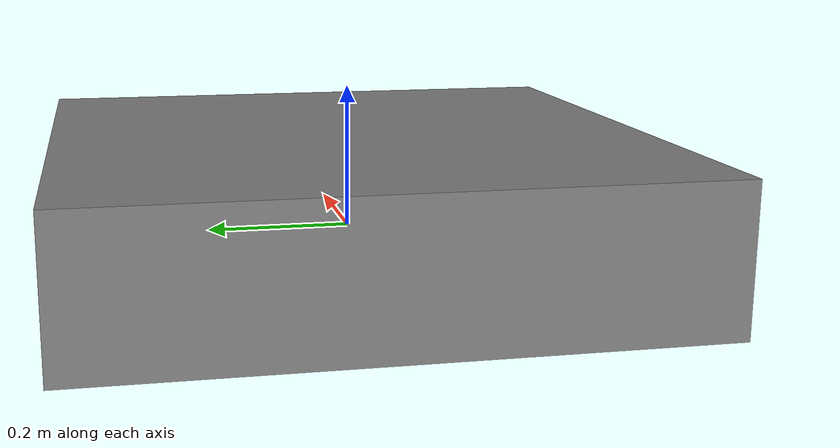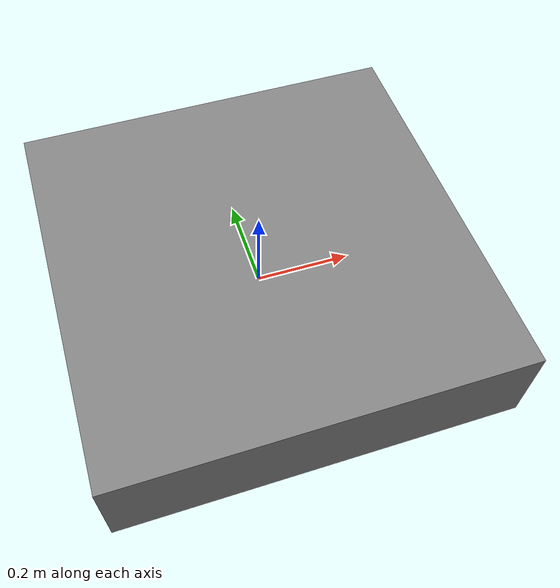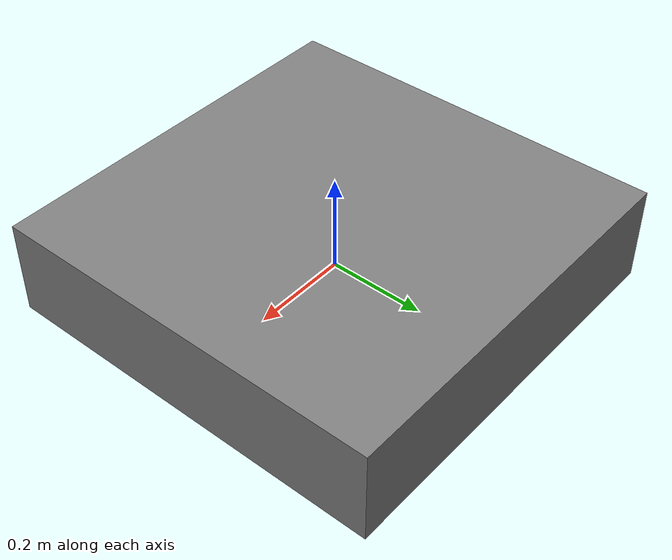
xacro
<?xml version="1.0"?>
<robot xmlns:xacro="http://www.ros.org/wiki/xacro" name="igvc_sim">

  <!-- Drivetrain parameters — must match igvc_control values -->
  <xacro:property name="wheel_separation" value="0.730" />
  <xacro:property name="wheel_radius"     value="0.0345" />

  <!-- Base link -->
  <link name="base_link">
    <visual>
      <geometry><box size="0.826 0.826 0.2" /></geometry>
      <material name="grey"><color rgba="0.5 0.5 0.5 1" /></material>
    </visual>
  </link>

  <link name="base_footprint" />
  <joint name="base_joint" type="fixed">
    <parent link="base_footprint" />
    <child  link="base_link" />
    <origin xyz="0 0 ${wheel_radius}" rpy="0 0 0" />
  </joint>

  <!-- Laser frame (for costmap visualization — offset to top of robot) -->
  <link name="laser_frame" />
  <joint name="laser_joint" type="fixed">
    <parent link="base_link" />
    <child  link="laser_frame" />
    <origin xyz="0.15 0 0.15" rpy="0 0 0" />
  </joint>

  <!-- Left wheel -->
  <link name="left_wheel">
    <visual>
      <geometry><cylinder radius="${wheel_radius}" length="0.05" /></geometry>
      <material name="black"><color rgba="0.1 0.1 0.1 1" /></material>
    </visual>
  </link>
  <joint name="left_wheel_joint" type="continuous">
    <parent link="base_link" />
    <child  link="left_wheel" />
    <origin xyz="0 ${wheel_separation/2} 0" rpy="${-pi/2} 0 0" />
    <axis xyz="0 0 1" />
  </joint>

  <!-- Right wheel -->
  <link name="right_wheel">
    <visual>
      <geometry><cylinder radius="${wheel_radius}" length="0.05" /></geometry>
      <material name="black"><color rgba="0.1 0.1 0.1 1" /></material>
    </visual>
  </link>
  <joint name="right_wheel_joint" type="continuous">
    <parent link="base_link" />
    <child  link="right_wheel" />
    <origin xyz="0 ${-wheel_separation/2} 0" rpy="${-pi/2} 0 0" />
    <axis xyz="0 0 1" />
  </joint>

  <!-- ros2_control mock hardware — echoes commands back as state -->
  <ros2_control name="igvc_sim_hardware" type="system">
    <hardware>
      <plugin>mock_components/GenericSystem</plugin>
      <param name="calculate_dynamics">true</param>
    </hardware>

    <joint name="left_wheel_joint">
      <command_interface name="velocity" />
      <state_interface name="position">
        <param name="initial_value">0.0</param>
      </state_interface>
      <state_interface name="velocity" />
    </joint>

    <joint name="right_wheel_joint">
      <command_interface name="velocity" />
      <state_interface name="position">
        <param name="initial_value">0.0</param>
      </state_interface>
      <state_interface name="velocity" />
    </joint>
  </ros2_control>

</robot>
